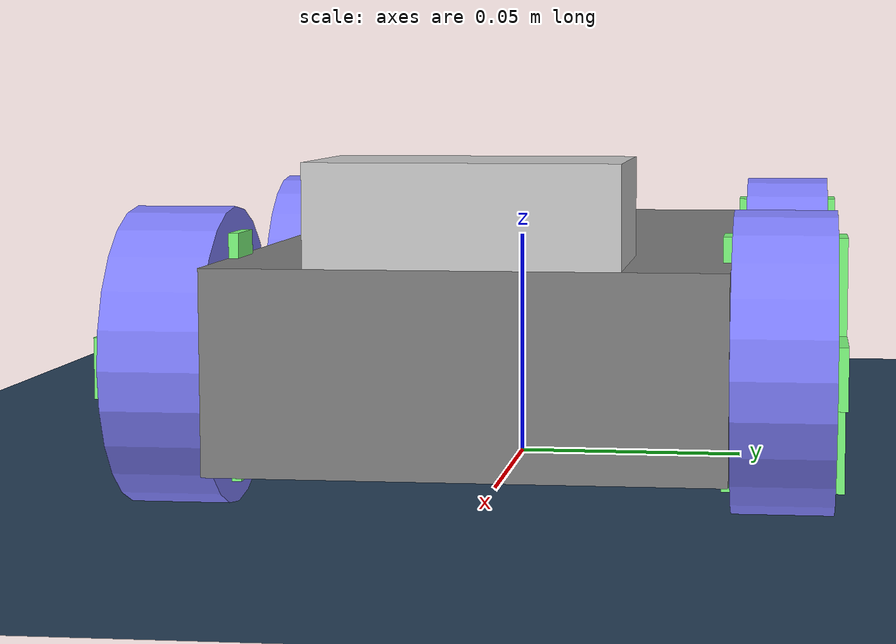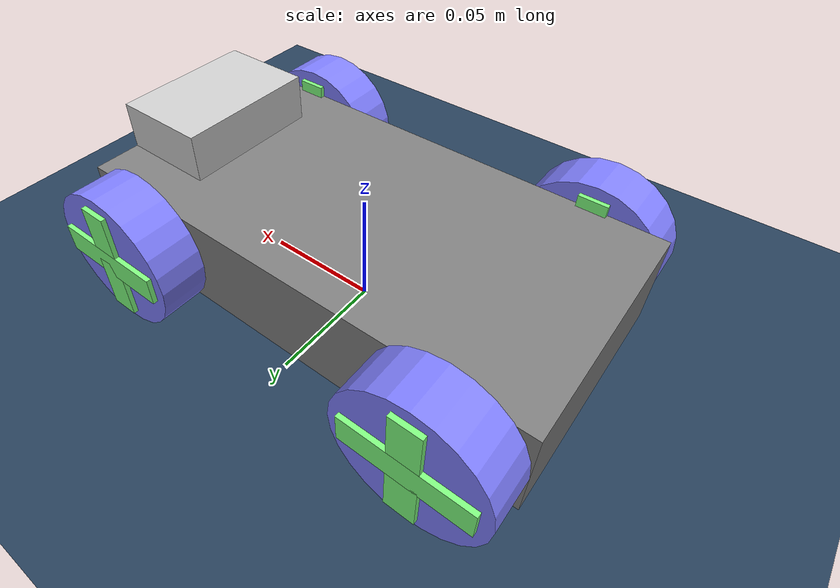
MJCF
<mujoco model="rover_simple">
    <compiler inertiafromgeom="true" angle="degree" coordinate="local" />
    <option gravity='0 0 -9.81' />

    <asset>
        <texture name="grid" type="2d" builtin="checker" width="512" height="512" rgb1=".1 .2 .3"
            rgb2=".2 .3 .4" />
        <material name="grid" texture="grid" texrepeat="1 1" texuniform="true" reflectance=".2" />
    </asset>

    <default>
        <joint damping=".03" />
    </default>

    <worldbody>
        <geom type="plane" size="3 3 .01" material="grid" />

        <body name="rover" pos="0 0 .03">
            <geom type="box" size="0.02 0.03 0.01" pos="0.08 0 0.03" rgba="0.8 0.8 0.8 1"/>
            <joint name="root" type="free" limited="false" pos="0 0 0" />
            <geom name="chassis" type="box" size="0.10 0.05 0.02" />

            <body name="wheel_fl" pos=".07 .06 0" zaxis="0 1 0">
                <joint name="wheel_fl_joint" type="hinge" axis="0 0 1" limited="false"/>
                <geom type="cylinder" size=".03 .01" rgba=".5 .5 1 1" friction="1 0.2 0.01" />
                <site type="box" rgba=".5 1 .5 1" size=".006 .025 .012" />
                <site type="box" rgba=".5 1 .5 1" size=".025 .006 .012" />
            </body>

            <body name="wheel_fr" pos=".07 -.06 0" zaxis="0 1 0">
                <joint name="wheel_fr_joint" type="hinge" axis="0 0 1" limited="false"/>
                <geom type="cylinder" size=".03 .01" rgba=".5 .5 1 1" friction="1 0.2 0.01" />
                <site type="box" rgba=".5 1 .5 1" size=".006 .025 .012" />
                <site type="box" rgba=".5 1 .5 1" size=".025 .006 .012" />
            </body>

            <body name="wheel_rl" pos="-.07 .06 0" zaxis="0 1 0">
                <joint name="wheel_rl_joint" type="hinge" axis="0 0 1" limited="false"/>
                <geom type="cylinder" size=".03 .01" rgba=".5 .5 1 1" friction="1 0.2 0.01" />
                <site type="box" rgba=".5 1 .5 1" size=".006 .025 .012" />
                <site type="box" rgba=".5 1 .5 1" size=".025 .006 .012" />
            </body>

            <body name="wheel_rr" pos="-.07 -.06 0" zaxis="0 1 0">
                <joint name="wheel_rr_joint" type="hinge" axis="0 0 1" limited="false"/>
                <geom type="cylinder" size=".03 .01" rgba=".5 .5 1 1" friction="1 0.2 0.01" />
                <site type="box" rgba=".5 1 .5 1" size=".006 .025 .012" />
                <site type="box" rgba=".5 1 .5 1" size=".025 .006 .012" />
            </body>
        </body>
    </worldbody>

    <actuator>
        <motor joint="wheel_fl_joint" ctrlrange="-1 1"/>
        <motor joint="wheel_fr_joint" ctrlrange="-1 1"/>
        <motor joint="wheel_rl_joint" ctrlrange="-1 1"/>
        <motor joint="wheel_rr_joint" ctrlrange="-1 1"/>
    </actuator>

</mujoco>
